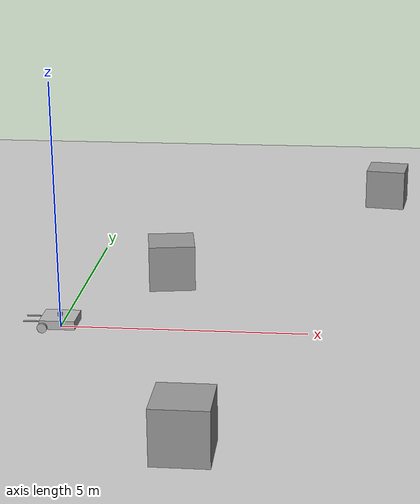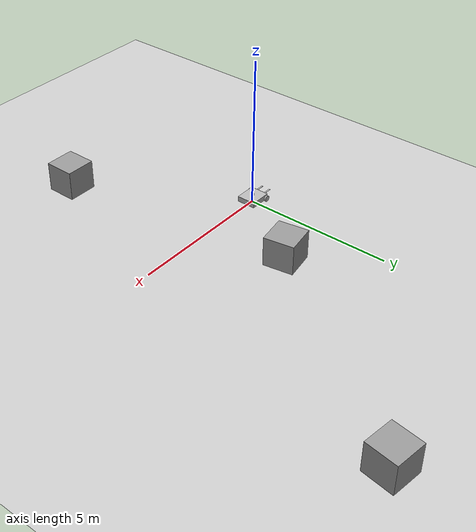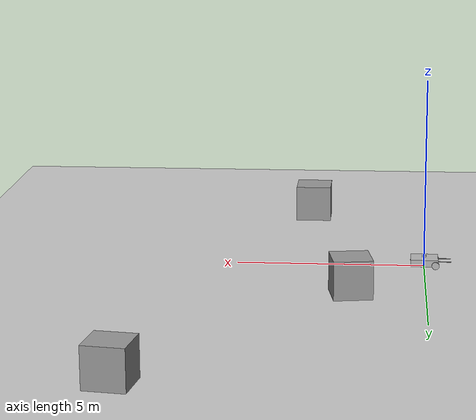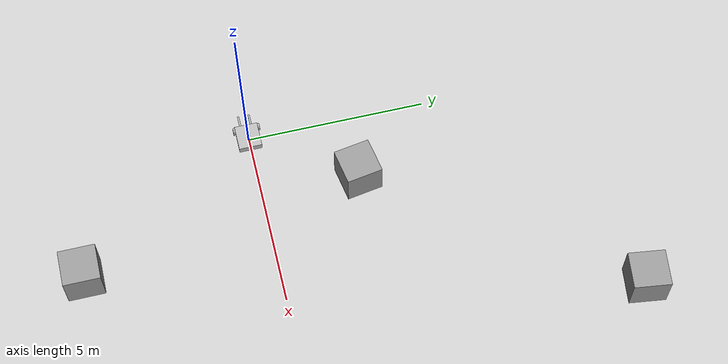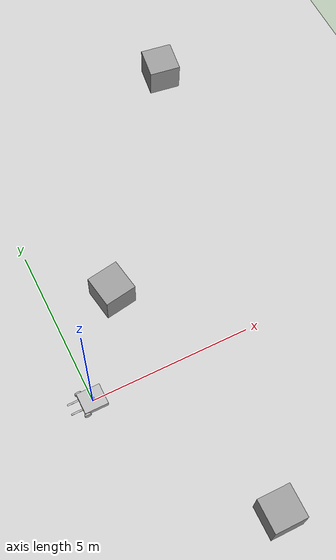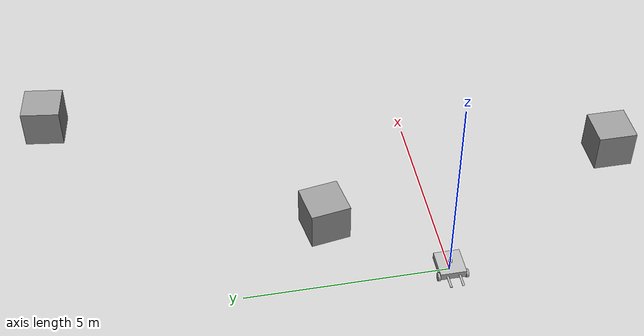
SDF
<sdf version="1.7">
 <world name="default">
  <light name="sun" type="directional">
   <pose>0 0 10 0 -0 0</pose>
   <diffuse>0.8 0.8 0.8 1</diffuse>
   <specular>0.2 0.2 0.2 1</specular>
   <attenuation>
    <range>1000</range>
    <constant>0.9</constant>
    <linear>0.01</linear>
    <quadratic>0.001</quadratic>
   </attenuation>
   <direction>-0.5 0.1 -0.9</direction>
   <spot><inner_angle>0</inner_angle><outer_angle>0</outer_angle><falloff>0</falloff></spot>
  </light>
  <model name="ground_plane">
   <static>1</static>
   <link name="link">
    <collision name="collision">
     <geometry><plane><normal>0 0 1</normal><size>100 100</size></plane></geometry>
     <surface><friction><ode><mu>100</mu><mu2>50</mu2></ode></friction></surface>
    </collision>
    <visual name="visual">
     <cast_shadows>0</cast_shadows>
     <geometry><plane><normal>0 0 1</normal><size>100 100</size></plane></geometry>
     <material>
      <script><uri>file://media/materials/scripts/gazebo.material</uri><name>Gazebo/Grey</name></script>
     </material>
    </visual>
   </link>
  </model>
  <gravity>0 0 -9.8</gravity>
  <magnetic_field>6e-06 2.3e-05 -4.2e-05</magnetic_field>
  <atmosphere type="adiabatic"/>
  <physics type="ode">
   <max_step_size>0.001</max_step_size>
   <real_time_factor>1</real_time_factor>
   <real_time_update_rate>1000</real_time_update_rate>
  </physics>
  <scene><ambient>0.4 0.4 0.4 1</ambient><background>0.7 0.7 0.7 1</background><shadows>1</shadows></scene>
  <spherical_coordinates>
   <surface_model>EARTH_WGS84</surface_model>
   <latitude_deg>0</latitude_deg>
   <longitude_deg>0</longitude_deg>
   <elevation>0</elevation>
   <heading_deg>0</heading_deg>
  </spherical_coordinates>
  <model name="unit_box">
   <pose>6.7976 9.36595 0.499995 -1.5708 -1e-05 -0.137434</pose>
   <link name="link">
    <inertial>
     <mass>1</mass>
     <inertia>
      <ixx>0.166667</ixx>
      <ixy>0</ixy>
      <ixz>0</ixz>
      <iyy>0.166667</iyy>
      <iyz>0</iyz>
      <izz>0.166667</izz>
     </inertia>
    </inertial>
    <collision name="collision"><geometry><box><size>1 1 1</size></box></geometry></collision>
    <visual name="visual">
     <geometry><box><size>1 1 1</size></box></geometry>
     <material>
      <script><name>Gazebo/Grey</name><uri>file://media/materials/scripts/gazebo.material</uri></script>
     </material>
    </visual>
   </link>
  </model>
  <model name="lgv">
   <link name="base_link">
    <inertial>
     <pose>0.006527 0 -0.002704 1.5708 -0 1.5708</pose>
     <mass>10.725</mass>
     <inertia>
      <ixx>0.476011</ixx>
      <ixy>1.73103e-18</ixy>
      <ixz>-2.64669e-18</ixz>
      <iyy>0.784563</iyy>
      <iyz>0.00611072</iyz>
      <izz>0.376002</izz>
     </inertia>
    </inertial>
    <collision name="base_link_collision"><geometry><box><size>0.72 0.64 0.18</size></box></geometry></collision>
    <collision name="base_link_fixed_joint_lump__front_caster_collision_1">
     <pose>0.14 0 -0.09 0 -0 0</pose>
     <geometry><sphere><radius>0.06</radius></sphere></geometry>
    </collision>
    <collision name="base_link_fixed_joint_lump__imu_link_collision_2">
     <pose>0 0 0.01 0 -0 0</pose>
     <geometry><box><size>0.1 0.1 0.1</size></box></geometry>
    </collision>
    <collision name="base_link_fixed_joint_lump__lidar_link_collision_3">
     <pose>0 0 0.12 0 -0 0</pose>
     <geometry><cylinder><length>0.055</length><radius>0.0508</radius></cylinder></geometry>
    </collision>
    <visual name="base_link_visual"><geometry><box><size>0.72 0.64 0.18</size></box></geometry></visual>
    <visual name="base_link_fixed_joint_lump__front_caster_visual_1">
     <pose>0.14 0 -0.09 0 -0 0</pose>
     <geometry><sphere><radius>0.06</radius></sphere></geometry>
    </visual>
    <visual name="base_link_fixed_joint_lump__dummyfork_l_link_visual_2">
     <pose>-0.54 0.15 0.01 0 -0 0</pose>
     <geometry><box><size>0.35 0.05 0.01</size></box></geometry>
    </visual>
    <visual name="base_link_fixed_joint_lump__dummyfork_r_link_visual_3">
     <pose>-0.54 -0.15 0.01 0 -0 0</pose>
     <geometry><box><size>0.35 0.05 0.01</size></box></geometry>
    </visual>
    <visual name="base_link_fixed_joint_lump__imu_link_visual_4">
     <pose>0 0 0.01 0 -0 0</pose>
     <geometry><box><size>0.1 0.1 0.1</size></box></geometry>
    </visual>
    <visual name="base_link_fixed_joint_lump__lidar_link_visual_5">
     <pose>0 0 0.12 0 -0 0</pose>
     <geometry><cylinder><length>0.055</length><radius>0.0508</radius></cylinder></geometry>
    </visual>
    <sensor name="imu_sensor" type="imu">
     <plugin name="imu_plugin" filename="libgazebo_ros_imu_sensor.so">
      <ros><remapping>~/out:=imu/data</remapping></ros>
      <initial_orientation_as_reference>0</initial_orientation_as_reference>
     </plugin>
     <always_on>1</always_on>
     <update_rate>100</update_rate>
     <visualize>1</visualize>
     <imu>
      <angular_velocity>
       <x>
        <noise type="gaussian">
         <mean>0</mean>
         <stddev>0.0002</stddev>
         <bias_mean>7.5e-06</bias_mean>
         <bias_stddev>8e-07</bias_stddev>
        </noise>
       </x>
       <y>
        <noise type="gaussian">
         <mean>0</mean>
         <stddev>0.0002</stddev>
         <bias_mean>7.5e-06</bias_mean>
         <bias_stddev>8e-07</bias_stddev>
        </noise>
       </y>
       <z>
        <noise type="gaussian">
         <mean>0</mean>
         <stddev>0.0002</stddev>
         <bias_mean>7.5e-06</bias_mean>
         <bias_stddev>8e-07</bias_stddev>
        </noise>
       </z>
      </angular_velocity>
      <linear_acceleration>
       <x>
        <noise type="gaussian">
         <mean>0</mean>
         <stddev>0.017</stddev>
         <bias_mean>0.1</bias_mean>
         <bias_stddev>0.001</bias_stddev>
        </noise>
       </x>
       <y>
        <noise type="gaussian">
         <mean>0</mean>
         <stddev>0.017</stddev>
         <bias_mean>0.1</bias_mean>
         <bias_stddev>0.001</bias_stddev>
        </noise>
       </y>
       <z>
        <noise type="gaussian">
         <mean>0</mean>
         <stddev>0.017</stddev>
         <bias_mean>0.1</bias_mean>
         <bias_stddev>0.001</bias_stddev>
        </noise>
       </z>
      </linear_acceleration>
     </imu>
     <pose>0 0 0.01 0 -0 0</pose>
    </sensor>
    <sensor name="lidar" type="ray">
     <always_on>1</always_on>
     <visualize>1</visualize>
     <update_rate>5</update_rate>
     <ray>
      <scan>
       <horizontal>
        <samples>360</samples>
        <resolution>1</resolution>
        <min_angle>0</min_angle>
        <max_angle>6.28</max_angle>
       </horizontal>
       <vertical><samples>1</samples><min_angle>0</min_angle><max_angle>0</max_angle></vertical>
      </scan>
      <range><min>0.12</min><max>3.5</max><resolution>0.015</resolution></range>
      <noise><type>gaussian</type><mean>0</mean><stddev>0.01</stddev></noise>
     </ray>
     <plugin name="scan" filename="libgazebo_ros_ray_sensor.so">
      <ros><remapping>~/out:=scan</remapping></ros>
      <output_type>sensor_msgs/LaserScan</output_type>
      <frame_name>lidar_link</frame_name>
     </plugin>
     <pose>0 0 0.12 0 -0 0</pose>
    </sensor>
   </link>
   <joint name="drivewhl_l_joint" type="revolute">
    <pose relative_to="base_link">-0.295 0.345 -0.05 0 -0 0</pose>
    <parent>base_link</parent>
    <child>drivewhl_l_link</child>
    <axis>
     <xyz>0 1 0</xyz>
     <limit><lower>-1e+16</lower><upper>1e+16</upper></limit>
     <dynamics><spring_reference>0</spring_reference><spring_stiffness>0</spring_stiffness></dynamics>
    </axis>
   </joint>
   <link name="drivewhl_l_link">
    <pose relative_to="drivewhl_l_joint">0 0 0 0 -0 0</pose>
    <inertial>
     <pose>0 0 0 1.5708 -0 0</pose>
     <mass>5</mass>
     <inertia><ixx>0.014</ixx><ixy>0</ixy><ixz>0</ixz><iyy>0.014</iyy><iyz>0</iyz><izz>0.025</izz></inertia>
    </inertial>
    <collision name="drivewhl_l_link_collision">
     <pose>0 0 0 1.5708 -0 0</pose>
     <geometry><cylinder><length>0.06</length><radius>0.1</radius></cylinder></geometry>
    </collision>
    <visual name="drivewhl_l_link_visual">
     <pose>0 0 0 1.5708 -0 0</pose>
     <geometry><cylinder><length>0.06</length><radius>0.1</radius></cylinder></geometry>
    </visual>
   </link>
   <joint name="drivewhl_r_joint" type="revolute">
    <pose relative_to="base_link">-0.295 -0.345 -0.05 0 -0 0</pose>
    <parent>base_link</parent>
    <child>drivewhl_r_link</child>
    <axis>
     <xyz>0 1 0</xyz>
     <limit><lower>-1e+16</lower><upper>1e+16</upper></limit>
     <dynamics><spring_reference>0</spring_reference><spring_stiffness>0</spring_stiffness></dynamics>
    </axis>
   </joint>
   <link name="drivewhl_r_link">
    <pose relative_to="drivewhl_r_joint">0 0 0 0 -0 0</pose>
    <inertial>
     <pose>0 0 0 1.5708 -0 0</pose>
     <mass>5</mass>
     <inertia><ixx>0.014</ixx><ixy>0</ixy><ixz>0</ixz><iyy>0.014</iyy><iyz>0</iyz><izz>0.025</izz></inertia>
    </inertial>
    <collision name="drivewhl_r_link_collision">
     <pose>0 0 0 1.5708 -0 0</pose>
     <geometry><cylinder><length>0.06</length><radius>0.1</radius></cylinder></geometry>
    </collision>
    <visual name="drivewhl_r_link_visual">
     <pose>0 0 0 1.5708 -0 0</pose>
     <geometry><cylinder><length>0.06</length><radius>0.1</radius></cylinder></geometry>
    </visual>
   </link>
   <static>0</static>
   <plugin name="Plugin_diff_drive" filename="libgazebo_ros_diff_drive.so">
    <update_rate>30</update_rate>
    <command_topic>cmd_vel</command_topic>
    <left_joint>drivewhl_l_joint</left_joint>
    <right_joint>drivewhl_r_joint</right_joint>
    <wheel_separation>0.75</wheel_separation>
    <wheel_diameter>0.2</wheel_diameter>
    <max_wheel_torque>100</max_wheel_torque>
    <max_wheel_acceleration>1.5</max_wheel_acceleration>
    <publish_odom>1</publish_odom>
    <publish_odom_tf>0</publish_odom_tf>
    <publish_wheel_tf>0</publish_wheel_tf>
    <odometry_topic>odom</odometry_topic>
    <odometry_frame>odom</odometry_frame>
    <robot_base_frame>base_link</robot_base_frame>
    <odometry_source>1</odometry_source>
    <ros><remapping>odom:=wheel/odometry</remapping></ros>
   </plugin>
   <plugin name="Plugin_joint_state_publisher" filename="libgazebo_ros_joint_state_publisher.so">
    <ros><remapping>~/out:=joint_states</remapping></ros>
    <update_rate>30</update_rate>
    <joint_name>drivewhl_l_joint</joint_name>
    <joint_name>drivewhl_r_joint</joint_name>
   </plugin>
   <pose>-4.8e-05 8.6e-05 0.15 0 -0 0.001098</pose>
  </model>
  <model name="unit_box_clone">
   <pose>1.89213 2.70197 0.499995 -1.57079 0 0.164301</pose>
   <link name="link">
    <inertial>
     <mass>1</mass>
     <inertia>
      <ixx>0.166667</ixx>
      <ixy>0</ixy>
      <ixz>0</ixz>
      <iyy>0.166667</iyy>
      <iyz>0</iyz>
      <izz>0.166667</izz>
     </inertia>
    </inertial>
    <collision name="collision"><geometry><box><size>1 1 1</size></box></geometry></collision>
    <visual name="visual">
     <geometry><box><size>1 1 1</size></box></geometry>
     <material>
      <script><name>Gazebo/Grey</name><uri>file://media/materials/scripts/gazebo.material</uri></script>
     </material>
    </visual>
   </link>
  </model>
  <model name="unit_box_clone_0">
   <pose>3.17822 -5.11625 0.499995 -0 -1e-05 -0.000128</pose>
   <link name="link">
    <inertial>
     <mass>1</mass>
     <inertia>
      <ixx>0.166667</ixx>
      <ixy>0</ixy>
      <ixz>0</ixz>
      <iyy>0.166667</iyy>
      <iyz>0</iyz>
      <izz>0.166667</izz>
     </inertia>
    </inertial>
    <collision name="collision"><geometry><box><size>1 1 1</size></box></geometry></collision>
    <visual name="visual">
     <geometry><box><size>1 1 1</size></box></geometry>
     <material>
      <script><name>Gazebo/Grey</name><uri>file://media/materials/scripts/gazebo.material</uri></script>
     </material>
    </visual>
   </link>
  </model>
 </world>
</sdf>
